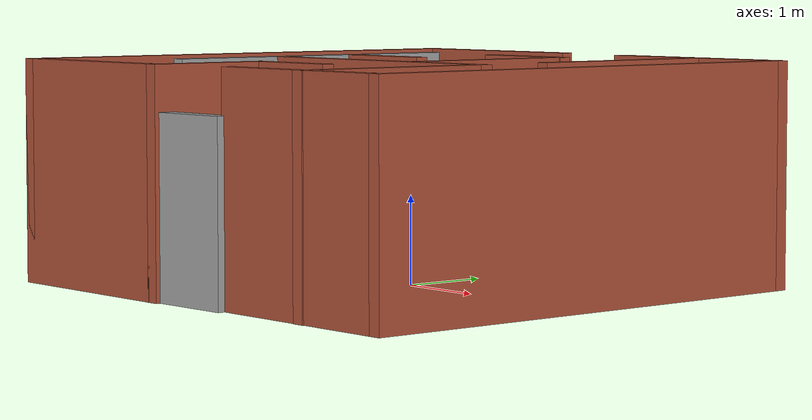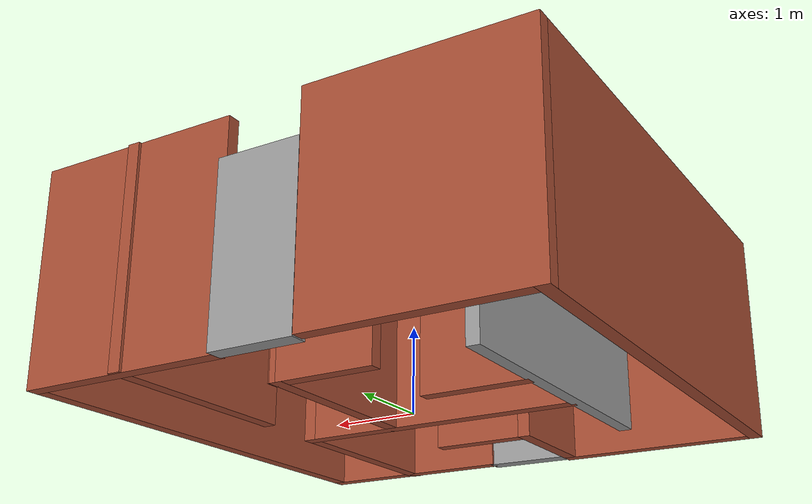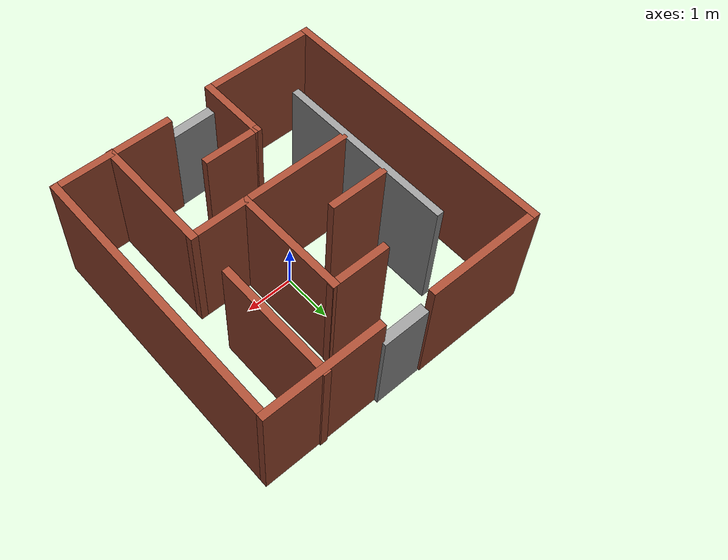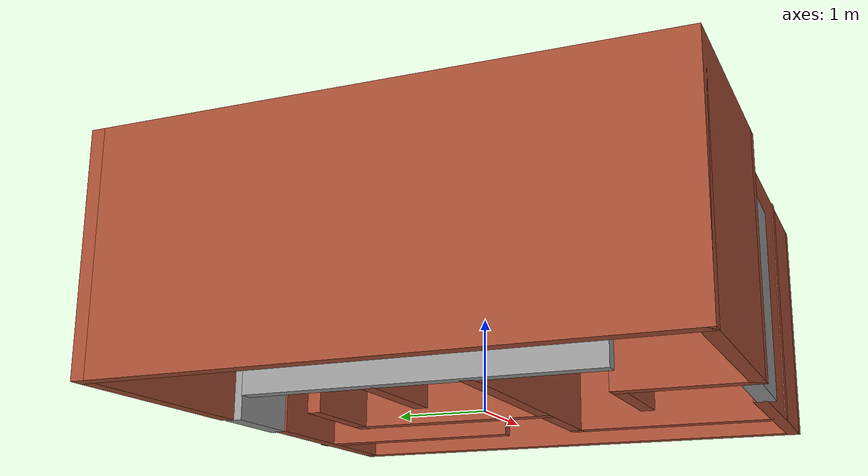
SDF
<?xml version='1.0'?>
<sdf version='1.7'>
  <model name='maze_world'>
    <pose>-0.037736 -0.050337 0 0 -0 0</pose>
    <link name='Door_0'>
      <collision name='Door_0_Collision'>
        <geometry>
          <box>
            <size>0.97935 0.2 2</size>
          </box>
        </geometry>
        <pose>0 0 1 0 -0 0</pose>
      </collision>
      <visual name='Door_0_Visual'>
        <pose>0 0 1 0 -0 0</pose>
        <geometry>
          <box>
            <size>0.97935 0.2 2</size>
          </box>
        </geometry>
        <material>
          <script>
            <uri>file://media/materials/scripts/gazebo.material</uri>
            <name>Gazebo/Grey</name>
          </script>
        </material>
      </visual>
      <pose>0.033062 2.8721 0 0 -0 0</pose>
    </link>
    <link name='Door_1'>
      <collision name='Door_1_Collision'>
        <geometry>
          <box>
            <size>1.04547 0.2 2</size>
          </box>
        </geometry>
        <pose>0 0 1 0 -0 0</pose>
      </collision>
      <visual name='Door_1_Visual'>
        <pose>0 0 1 0 -0 0</pose>
        <geometry>
          <box>
            <size>1.04547 0.2 2</size>
          </box>
        </geometry>
        <material>
          <script>
            <uri>file://media/materials/scripts/gazebo.material</uri>
            <name>Gazebo/Grey</name>
          </script>
        </material>
      </visual>
      <pose>-0 -2.8411 0 0 0 -3.12572</pose>
    </link>
    <link name='Wall_13'>
      <collision name='Wall_13_Collision'>
        <geometry>
          <box>
            <size>2.5 0.15 2.5</size>
          </box>
        </geometry>
        <pose>0 0 1.25 0 -0 0</pose>
      </collision>
      <visual name='Wall_13_Visual'>
        <pose>0 0 1.25 0 -0 0</pose>
        <geometry>
          <box>
            <size>2.5 0.15 2.5</size>
          </box>
        </geometry>
        <material>
          <script>
            <uri>file://media/materials/scripts/gazebo.material</uri>
            <name>Gazebo/Bricks</name>
          </script>
          <ambient>1 1 1 1</ambient>
        </material>
        <meta>
          <layer>0</layer>
        </meta>
      </visual>
      <pose>-1.73045 2.925 0 0 -0 3.14159</pose>
    </link>
    <link name='Wall_14'>
      <collision name='Wall_14_Collision'>
        <geometry>
          <box>
            <size>6 0.15 2.5</size>
          </box>
        </geometry>
        <pose>0 0 1.25 0 -0 0</pose>
      </collision>
      <visual name='Wall_14_Visual'>
        <pose>0 0 1.25 0 -0 0</pose>
        <geometry>
          <box>
            <size>6 0.15 2.5</size>
          </box>
        </geometry>
        <material>
          <script>
            <uri>file://media/materials/scripts/gazebo.material</uri>
            <name>Gazebo/Bricks</name>
          </script>
          <ambient>1 1 1 1</ambient>
        </material>
        <meta>
          <layer>0</layer>
        </meta>
      </visual>
      <pose>-2.90545 -0 0 0 -0 -1.5708</pose>
    </link>
    <link name='Wall_15'>
      <collision name='Wall_15_Collision'>
        <geometry>
          <box>
            <size>2.5 0.15 2.5</size>
          </box>
        </geometry>
        <pose>0 0 1.25 0 -0 0</pose>
      </collision>
      <visual name='Wall_15_Visual'>
        <pose>0 0 1.25 0 -0 0</pose>
        <geometry>
          <box>
            <size>2.5 0.15 2.5</size>
          </box>
        </geometry>
        <material>
          <script>
            <uri>file://media/materials/scripts/gazebo.material</uri>
            <name>Gazebo/Bricks</name>
          </script>
          <ambient>1 1 1 1</ambient>
        </material>
        <meta>
          <layer>0</layer>
        </meta>
      </visual>
      <pose>-1.73045 -2.925 0 0 -0 0</pose>
    </link>
    <link name='Wall_16'>
      <collision name='Wall_16_Collision'>
        <geometry>
          <box>
            <size>1.5 0.15 2.5</size>
          </box>
        </geometry>
        <pose>0 0 1.25 0 -0 0</pose>
      </collision>
      <visual name='Wall_16_Visual'>
        <pose>0 0 1.25 0 -0 0</pose>
        <geometry>
          <box>
            <size>1.5 0.15 2.5</size>
          </box>
        </geometry>
        <material>
          <script>
            <uri>file://media/materials/scripts/gazebo.material</uri>
            <name>Gazebo/Bricks</name>
          </script>
          <ambient>1 1 1 1</ambient>
        </material>
        <meta>
          <layer>0</layer>
        </meta>
      </visual>
      <pose>-0.55545 -2.25 0 0 -0 1.5708</pose>
    </link>
    <link name='Wall_17'>
      <collision name='Wall_17_Collision'>
        <geometry>
          <box>
            <size>1.25 0.15 2.5</size>
          </box>
        </geometry>
        <pose>0 0 1.25 0 -0 0</pose>
      </collision>
      <visual name='Wall_17_Visual'>
        <pose>0 0 1.25 0 -0 0</pose>
        <geometry>
          <box>
            <size>1.25 0.15 2.5</size>
          </box>
        </geometry>
        <material>
          <script>
            <uri>file://media/materials/scripts/gazebo.material</uri>
            <name>Gazebo/Bricks</name>
          </script>
          <ambient>1 1 1 1</ambient>
        </material>
        <meta>
          <layer>0</layer>
        </meta>
      </visual>
      <pose>-0.00545 -1.575 0 0 -0 0</pose>
    </link>
    <link name='Wall_19'>
      <collision name='Wall_19_Collision'>
        <geometry>
          <box>
            <size>2.5 0.15 2.5</size>
          </box>
        </geometry>
        <pose>0 0 1.25 0 -0 0</pose>
      </collision>
      <visual name='Wall_19_Visual'>
        <pose>0 0 1.25 0 -0 0</pose>
        <geometry>
          <box>
            <size>2.5 0.15 2.5</size>
          </box>
        </geometry>
        <material>
          <script>
            <uri>file://media/materials/scripts/gazebo.material</uri>
            <name>Gazebo/Bricks</name>
          </script>
          <ambient>1 1 1 1</ambient>
        </material>
        <meta>
          <layer>0</layer>
        </meta>
      </visual>
      <pose>1.73045 -2.77497 0 0 -0 0</pose>
    </link>
    <link name='Wall_20'>
      <collision name='Wall_20_Collision'>
        <geometry>
          <box>
            <size>5.75 0.15 2.5</size>
          </box>
        </geometry>
        <pose>0 0 1.25 0 -0 0</pose>
      </collision>
      <visual name='Wall_20_Visual'>
        <pose>0 0 1.25 0 -0 0</pose>
        <geometry>
          <box>
            <size>5.75 0.15 2.5</size>
          </box>
        </geometry>
        <material>
          <script>
            <uri>file://media/materials/scripts/gazebo.material</uri>
            <name>Gazebo/Bricks</name>
          </script>
          <ambient>1 1 1 1</ambient>
        </material>
        <meta>
          <layer>0</layer>
        </meta>
      </visual>
      <pose>2.90545 0.025025 0 0 -0 1.5708</pose>
    </link>
    <link name='Wall_21'>
      <collision name='Wall_21_Collision'>
        <geometry>
          <box>
            <size>2.5 0.15 2.5</size>
          </box>
        </geometry>
        <pose>0 0 1.25 0 -0 0</pose>
      </collision>
      <visual name='Wall_21_Visual'>
        <pose>0 0 1.25 0 -0 0</pose>
        <geometry>
          <box>
            <size>2.5 0.15 2.5</size>
          </box>
        </geometry>
        <material>
          <script>
            <uri>file://media/materials/scripts/gazebo.material</uri>
            <name>Gazebo/Bricks</name>
          </script>
          <ambient>1 1 1 1</ambient>
        </material>
        <meta>
          <layer>0</layer>
        </meta>
      </visual>
      <pose>1.73045 2.82503 0 0 -0 3.14159</pose>
    </link>
    <link name='Wall_23'>
      <collision name='Wall_23_Collision'>
        <geometry>
          <box>
            <size>2.5 0.15 2.5</size>
          </box>
        </geometry>
        <pose>0 0 1.25 0 -0 0</pose>
      </collision>
      <visual name='Wall_23_Visual'>
        <pose>0 0 1.25 0 -0 0</pose>
        <geometry>
          <box>
            <size>2.5 0.15 2.5</size>
          </box>
        </geometry>
        <material>
          <script>
            <uri>file://media/materials/scripts/gazebo.material</uri>
            <name>Gazebo/Bricks</name>
          </script>
          <ambient>1 1 1 1</ambient>
        </material>
        <meta>
          <layer>0</layer>
        </meta>
      </visual>
      <pose>1.73247 1.68388 0 0 -0 -1.5708</pose>
    </link>
    <link name='Wall_25'>
      <collision name='Wall_25_Collision'>
        <geometry>
          <box>
            <size>2.5 0.15 2.5</size>
          </box>
        </geometry>
        <pose>0 0 1.25 0 -0 0</pose>
      </collision>
      <visual name='Wall_25_Visual'>
        <pose>0 0 1.25 0 -0 0</pose>
        <geometry>
          <box>
            <size>2.5 0.15 2.5</size>
          </box>
        </geometry>
        <material>
          <script>
            <uri>file://media/materials/scripts/gazebo.material</uri>
            <name>Gazebo/Bricks</name>
          </script>
          <ambient>1 1 1 1</ambient>
        </material>
        <meta>
          <layer>0</layer>
        </meta>
      </visual>
      <pose>1.7457 -1.6132 0 0 -0 1.5708</pose>
    </link>
    <link name='Wall_26'>
      <collision name='Wall_26_Collision'>
        <geometry>
          <box>
            <size>3.5 0.15 2.5</size>
          </box>
        </geometry>
        <pose>0 0 1.25 0 -0 0</pose>
      </collision>
      <visual name='Wall_26_Visual'>
        <pose>0 0 1.25 0 -0 0</pose>
        <geometry>
          <box>
            <size>3.5 0.15 2.5</size>
          </box>
        </geometry>
        <material>
          <script>
            <uri>file://media/materials/scripts/gazebo.material</uri>
            <name>Gazebo/Bricks</name>
          </script>
          <ambient>1 1 1 1</ambient>
        </material>
        <meta>
          <layer>0</layer>
        </meta>
      </visual>
      <pose>0.0707 -0.4382 0 0 -0 3.14159</pose>
    </link>
    <link name='Wall_30'>
      <collision name='Wall_30_Collision'>
        <geometry>
          <box>
            <size>1.25 0.15 2.5</size>
          </box>
        </geometry>
        <pose>0 0 1.25 0 -0 0</pose>
      </collision>
      <visual name='Wall_30_Visual'>
        <pose>0 0 1.25 0 -0 0</pose>
        <geometry>
          <box>
            <size>1.25 0.15 2.5</size>
          </box>
        </geometry>
        <material>
          <script>
            <uri>file://media/materials/scripts/gazebo.material</uri>
            <name>Gazebo/Bricks</name>
          </script>
          <ambient>1 1 1 1</ambient>
        </material>
        <meta>
          <layer>0</layer>
        </meta>
      </visual>
      <pose>-1.037 0.5974 0 0 -0 0</pose>
    </link>
    <link name='Wall_32'>
      <collision name='Wall_32_Collision'>
        <geometry>
          <box>
            <size>2.36779 0.15 2.5</size>
          </box>
        </geometry>
        <pose>0 0 1.25 0 -0 0</pose>
      </collision>
      <visual name='Wall_32_Visual'>
        <pose>0 0 1.25 0 -0 0</pose>
        <geometry>
          <box>
            <size>2.36779 0.15 2.5</size>
          </box>
        </geometry>
        <material>
          <script>
            <uri>file://media/materials/scripts/gazebo.material</uri>
            <name>Gazebo/Bricks</name>
          </script>
          <ambient>1 1 1 1</ambient>
        </material>
        <meta>
          <layer>0</layer>
        </meta>
      </visual>
      <pose>0.588512 0.674725 0 0 -0 1.57676</pose>
    </link>
    <link name='Wall_33'>
      <collision name='Wall_33_Collision'>
        <geometry>
          <box>
            <size>1.25 0.15 2.5</size>
          </box>
        </geometry>
        <pose>0 0 1.25 0 -0 0</pose>
      </collision>
      <visual name='Wall_33_Visual'>
        <pose>0 0 1.25 0 -0 0</pose>
        <geometry>
          <box>
            <size>1.25 0.15 2.5</size>
          </box>
        </geometry>
        <material>
          <script>
            <uri>file://media/materials/scripts/gazebo.material</uri>
            <name>Gazebo/Bricks</name>
          </script>
          <ambient>1 1 1 1</ambient>
        </material>
        <meta>
          <layer>0</layer>
        </meta>
      </visual>
      <pose>0.045125 1.7836 0 0 -0 3.14159</pose>
    </link>
    <link name='Wall_35'>
      <collision name='Wall_35_Collision'>
        <geometry>
          <box>
            <size>3.75 0.15 2.5</size>
          </box>
        </geometry>
        <pose>0 0 1.25 0 -0 0</pose>
      </collision>
      <visual name='Wall_35_Visual'>
        <pose>0 0 1.25 0 -0 0</pose>
        <geometry>
          <box>
            <size>3.75 0.15 2.5</size>
          </box>
        </geometry>
        <material>
          <script>
            <uri>file://media/materials/scripts/gazebo.material</uri>
            <name>Gazebo/Grey</name>
          </script>
          <ambient>1 1 1 1</ambient>
        </material>
        <meta>
          <layer>0</layer>
        </meta>
      </visual>
      <pose>-1.70602 0.04055 0 0 -0 -1.5708</pose>
    </link>
    <static>1</static>
  </model>
</sdf>
